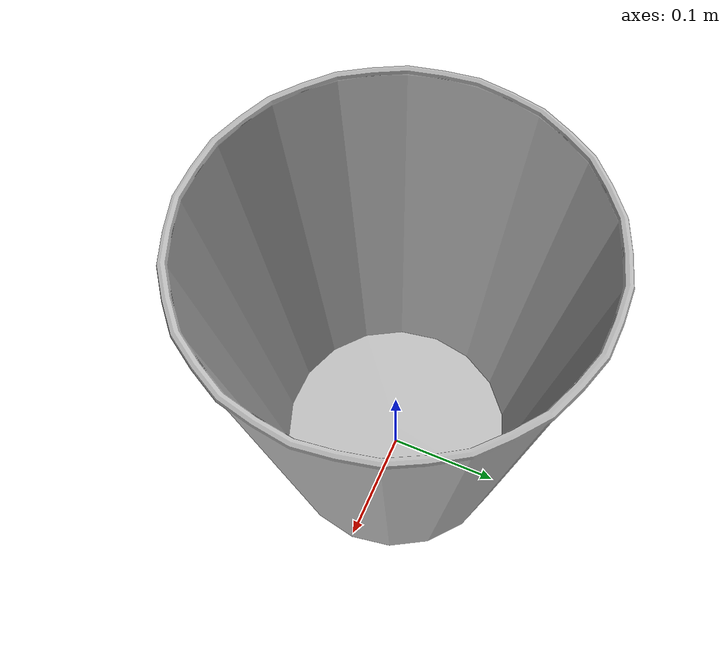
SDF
<?xml version="1.0" ?>
<sdf version="1.6">
  <model name="aws_robomaker_residential_Trash_01">
    <link name="link">

      <inertial>

        <mass>0.1</mass>
        <inertia>
            <ixy>0</ixy>
            <ixz>0</ixz>
            <iyz>0</iyz>
            <ixx>0.05288</ixx>
            <iyy>0.05288</iyy>
            <izz>0.09132</izz>
          </inertia>
      </inertial>

      <collision name="collision">
        <geometry>
          <mesh>
            <uri>model://aws_robomaker_residential_Trash_01/meshes/aws_Trash_01_collision.DAE</uri>
            <scale>1 1 1</scale>
          </mesh>
        </geometry>

      </collision>

      <visual name="visual">
	    <geometry>
          <mesh>
            <uri>model://aws_robomaker_residential_Trash_01/meshes/aws_Trash_01_visual.DAE</uri>
          </mesh>
        </geometry>
      <meta> <layer> 1 </layer></meta>
</visual>
    </link>
  </model>
</sdf>
